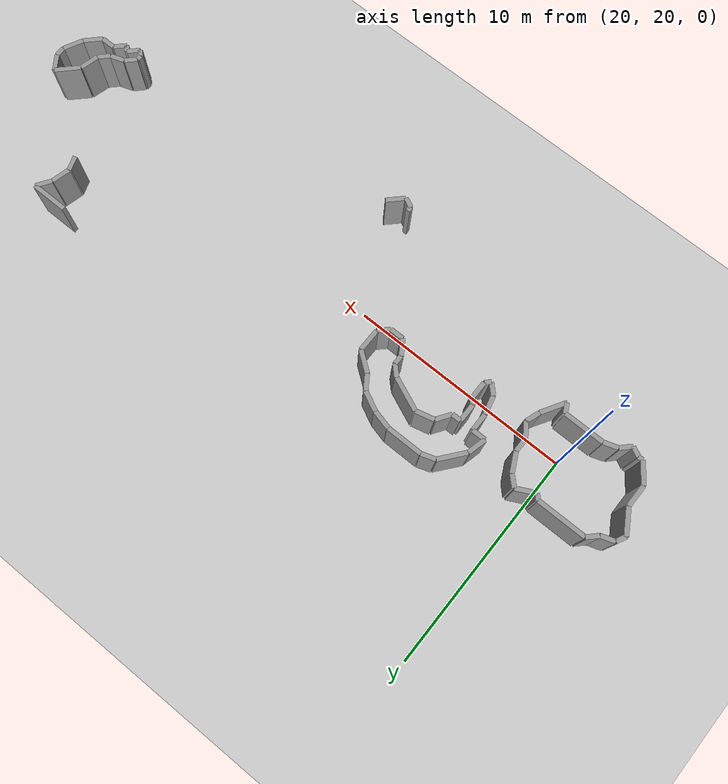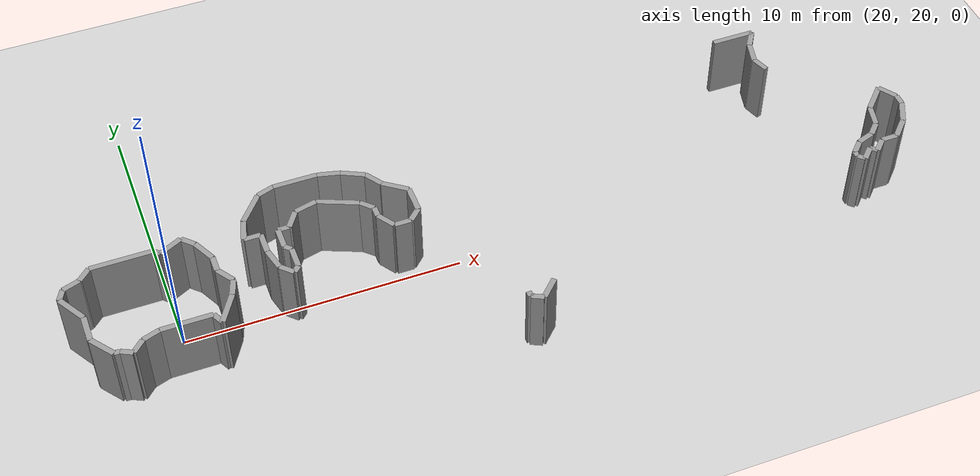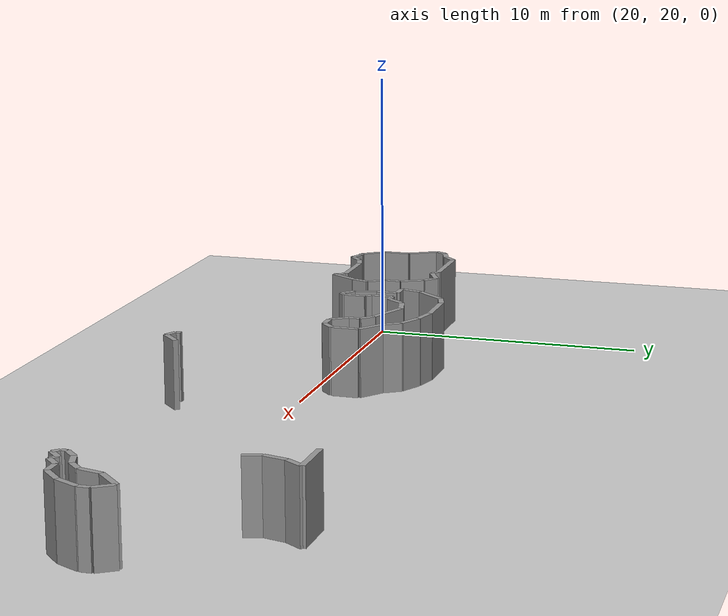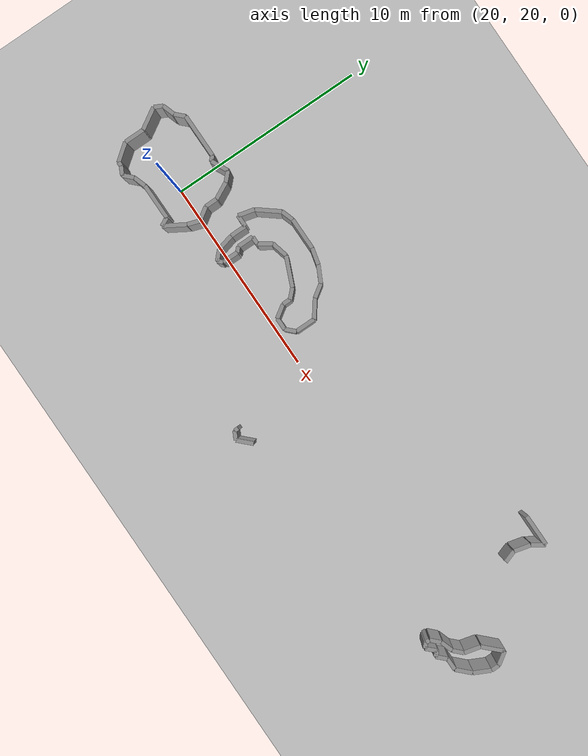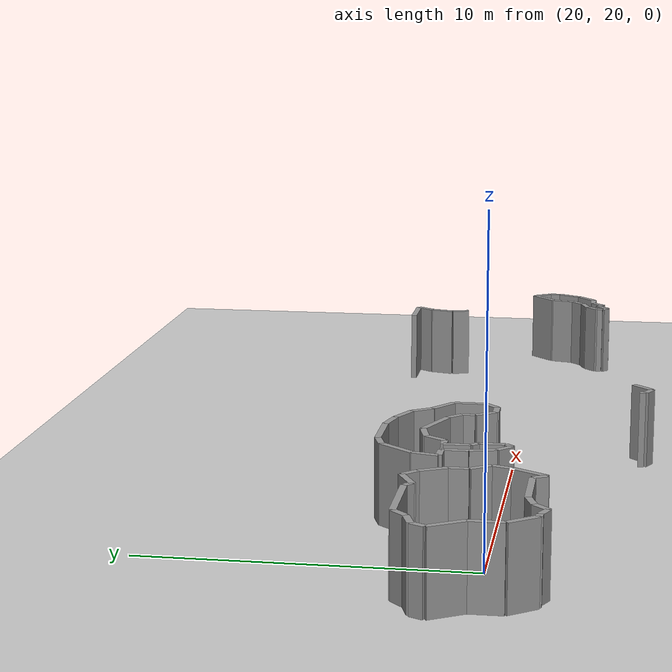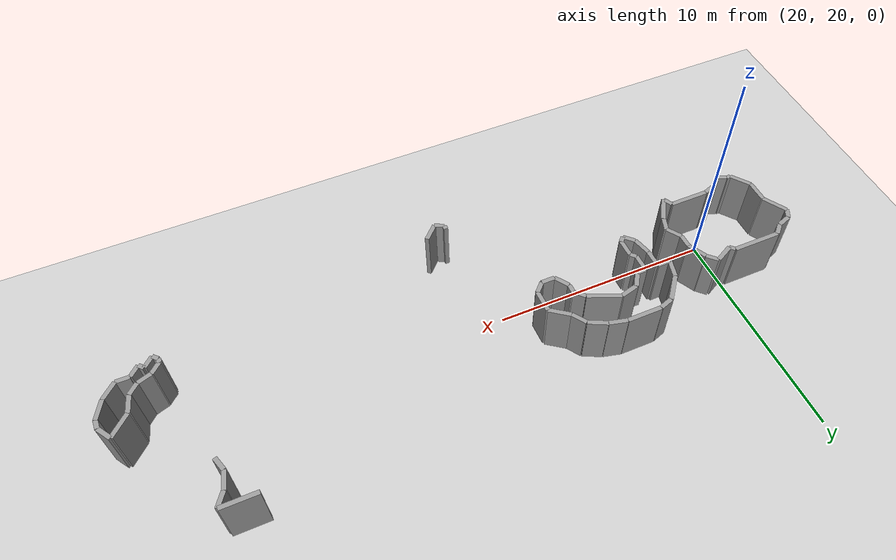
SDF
<sdf version="1.4">
 <world name="1_wall">
  <model name="ground_plane">
   <static>1</static>
   <link name="link">
    <collision name="collision">
     <geometry><plane><normal>0 0 1</normal><size>1000 1000</size></plane></geometry>
     <surface><friction><ode><mu>100</mu><mu2>50</mu2></ode></friction></surface>
    </collision>
    <visual name="visual">
     <cast_shadows>0</cast_shadows>
     <geometry><plane><normal>0 0 1</normal><size>10000 10000</size></plane></geometry>
     <material>
      <script><uri>file://media/materials/scripts/gazebo.material</uri><name>Gazebo/Grey</name></script>
     </material>
    </visual>
    <velocity_decay><linear>0</linear><angular>0</angular></velocity_decay>
   </link>
  </model>
  <model name="Wall_757">
   <static>1</static>
   <link name="Wall_757">
    <collision name="Wall_Collision_757">
     <geometry><box><size>1.6 0.2 2.5</size></box></geometry>
     <pose>0 0 1.25 0 -0 0</pose>
    </collision>
    <visual name="Wall_Visual_757">
     <pose>0 0 1.25 0 -0 0</pose>
     <geometry><box><size>1.6 0.2 2.5</size></box></geometry>
     <material>
      <script><uri>file://media/materials/scripts/gazebo.material</uri><name>Gazebo/Grey</name></script>
     </material>
    </visual>
    <velocity_decay><linear>0</linear><angular>0</angular></velocity_decay>
    <pose>42.8 24.8 0 0 0 0.0</pose>
   </link>
  </model>
  <model name="Wall_758">
   <static>1</static>
   <link name="Wall_758">
    <collision name="Wall_Collision_758">
     <geometry><box><size>0.721110255093 0.2 2.5</size></box></geometry>
     <pose>0 0 1.25 0 -0 0</pose>
    </collision>
    <visual name="Wall_Visual_758">
     <pose>0 0 1.25 0 -0 0</pose>
     <geometry><box><size>0.721110255093 0.2 2.5</size></box></geometry>
     <material>
      <script><uri>file://media/materials/scripts/gazebo.material</uri><name>Gazebo/Grey</name></script>
     </material>
    </visual>
    <velocity_decay><linear>0</linear><angular>0</angular></velocity_decay>
    <pose>43.4 24.5 0 0 0 -2.15879893034</pose>
   </link>
  </model>
  <model name="Wall_759">
   <static>1</static>
   <link name="Wall_759">
    <collision name="Wall_Collision_759">
     <geometry><box><size>0.824621125124 0.2 2.5</size></box></geometry>
     <pose>0 0 1.25 0 -0 0</pose>
    </collision>
    <visual name="Wall_Visual_759">
     <pose>0 0 1.25 0 -0 0</pose>
     <geometry><box><size>0.824621125124 0.2 2.5</size></box></geometry>
     <material>
      <script><uri>file://media/materials/scripts/gazebo.material</uri><name>Gazebo/Grey</name></script>
     </material>
    </visual>
    <velocity_decay><linear>0</linear><angular>0</angular></velocity_decay>
    <pose>43.1 23.8 0 0 0 -1.81577498992</pose>
   </link>
  </model>
  <model name="Wall_760">
   <static>1</static>
   <link name="Wall_760">
    <collision name="Wall_Collision_760">
     <geometry><box><size>0.632455532034 0.2 2.5</size></box></geometry>
     <pose>0 0 1.25 0 -0 0</pose>
    </collision>
    <visual name="Wall_Visual_760">
     <pose>0 0 1.25 0 -0 0</pose>
     <geometry><box><size>0.632455532034 0.2 2.5</size></box></geometry>
     <material>
      <script><uri>file://media/materials/scripts/gazebo.material</uri><name>Gazebo/Grey</name></script>
     </material>
    </visual>
    <velocity_decay><linear>0</linear><angular>0</angular></velocity_decay>
    <pose>43.1 23.1 0 0 0 -1.2490457724</pose>
   </link>
  </model>
  <model name="Wall_761">
   <static>1</static>
   <link name="Wall_761">
    <collision name="Wall_Collision_761">
     <geometry><box><size>0.565685424949 0.2 2.5</size></box></geometry>
     <pose>0 0 1.25 0 -0 0</pose>
    </collision>
    <visual name="Wall_Visual_761">
     <pose>0 0 1.25 0 -0 0</pose>
     <geometry><box><size>0.565685424949 0.2 2.5</size></box></geometry>
     <material>
      <script><uri>file://media/materials/scripts/gazebo.material</uri><name>Gazebo/Grey</name></script>
     </material>
    </visual>
    <velocity_decay><linear>0</linear><angular>0</angular></velocity_decay>
    <pose>23.8 19.8 0 0 0 -0.785398163397</pose>
   </link>
  </model>
  <model name="Wall_762">
   <static>1</static>
   <link name="Wall_762">
    <collision name="Wall_Collision_762">
     <geometry><box><size>0.282842712475 0.2 2.5</size></box></geometry>
     <pose>0 0 1.25 0 -0 0</pose>
    </collision>
    <visual name="Wall_Visual_762">
     <pose>0 0 1.25 0 -0 0</pose>
     <geometry><box><size>0.282842712475 0.2 2.5</size></box></geometry>
     <material>
      <script><uri>file://media/materials/scripts/gazebo.material</uri><name>Gazebo/Grey</name></script>
     </material>
    </visual>
    <velocity_decay><linear>0</linear><angular>0</angular></velocity_decay>
    <pose>24.1 19.7 0 0 0 0.785398163397</pose>
   </link>
  </model>
  <model name="Wall_763">
   <static>1</static>
   <link name="Wall_763">
    <collision name="Wall_Collision_763">
     <geometry><box><size>0.8 0.2 2.5</size></box></geometry>
     <pose>0 0 1.25 0 -0 0</pose>
    </collision>
    <visual name="Wall_Visual_763">
     <pose>0 0 1.25 0 -0 0</pose>
     <geometry><box><size>0.8 0.2 2.5</size></box></geometry>
     <material>
      <script><uri>file://media/materials/scripts/gazebo.material</uri><name>Gazebo/Grey</name></script>
     </material>
    </visual>
    <velocity_decay><linear>0</linear><angular>0</angular></velocity_decay>
    <pose>24.2 20.2 0 0 0 1.57079632679</pose>
   </link>
  </model>
  <model name="Wall_764">
   <static>1</static>
   <link name="Wall_764">
    <collision name="Wall_Collision_764">
     <geometry><box><size>0.282842712475 0.2 2.5</size></box></geometry>
     <pose>0 0 1.25 0 -0 0</pose>
    </collision>
    <visual name="Wall_Visual_764">
     <pose>0 0 1.25 0 -0 0</pose>
     <geometry><box><size>0.282842712475 0.2 2.5</size></box></geometry>
     <material>
      <script><uri>file://media/materials/scripts/gazebo.material</uri><name>Gazebo/Grey</name></script>
     </material>
    </visual>
    <velocity_decay><linear>0</linear><angular>0</angular></velocity_decay>
    <pose>24.1 20.7 0 0 0 2.35619449019</pose>
   </link>
  </model>
  <model name="Wall_765">
   <static>1</static>
   <link name="Wall_765">
    <collision name="Wall_Collision_765">
     <geometry><box><size>0.8 0.2 2.5</size></box></geometry>
     <pose>0 0 1.25 0 -0 0</pose>
    </collision>
    <visual name="Wall_Visual_765">
     <pose>0 0 1.25 0 -0 0</pose>
     <geometry><box><size>0.8 0.2 2.5</size></box></geometry>
     <material>
      <script><uri>file://media/materials/scripts/gazebo.material</uri><name>Gazebo/Grey</name></script>
     </material>
    </visual>
    <velocity_decay><linear>0</linear><angular>0</angular></velocity_decay>
    <pose>24.0 21.2 0 0 0 1.57079632679</pose>
   </link>
  </model>
  <model name="Wall_766">
   <static>1</static>
   <link name="Wall_766">
    <collision name="Wall_Collision_766">
     <geometry><box><size>0.4 0.2 2.5</size></box></geometry>
     <pose>0 0 1.25 0 -0 0</pose>
    </collision>
    <visual name="Wall_Visual_766">
     <pose>0 0 1.25 0 -0 0</pose>
     <geometry><box><size>0.4 0.2 2.5</size></box></geometry>
     <material>
      <script><uri>file://media/materials/scripts/gazebo.material</uri><name>Gazebo/Grey</name></script>
     </material>
    </visual>
    <velocity_decay><linear>0</linear><angular>0</angular></velocity_decay>
    <pose>24.2 21.6 0 0 0 0.0</pose>
   </link>
  </model>
  <model name="Wall_767">
   <static>1</static>
   <link name="Wall_767">
    <collision name="Wall_Collision_767">
     <geometry><box><size>0.721110255093 0.2 2.5</size></box></geometry>
     <pose>0 0 1.25 0 -0 0</pose>
    </collision>
    <visual name="Wall_Visual_767">
     <pose>0 0 1.25 0 -0 0</pose>
     <geometry><box><size>0.721110255093 0.2 2.5</size></box></geometry>
     <material>
      <script><uri>file://media/materials/scripts/gazebo.material</uri><name>Gazebo/Grey</name></script>
     </material>
    </visual>
    <velocity_decay><linear>0</linear><angular>0</angular></velocity_decay>
    <pose>24.6 21.9 0 0 0 0.982793723247</pose>
   </link>
  </model>
  <model name="Wall_768">
   <static>1</static>
   <link name="Wall_768">
    <collision name="Wall_Collision_768">
     <geometry><box><size>0.824621125124 0.2 2.5</size></box></geometry>
     <pose>0 0 1.25 0 -0 0</pose>
    </collision>
    <visual name="Wall_Visual_768">
     <pose>0 0 1.25 0 -0 0</pose>
     <geometry><box><size>0.824621125124 0.2 2.5</size></box></geometry>
     <material>
      <script><uri>file://media/materials/scripts/gazebo.material</uri><name>Gazebo/Grey</name></script>
     </material>
    </visual>
    <velocity_decay><linear>0</linear><angular>0</angular></velocity_decay>
    <pose>25.2 22.3 0 0 0 0.244978663127</pose>
   </link>
  </model>
  <model name="Wall_769">
   <static>1</static>
   <link name="Wall_769">
    <collision name="Wall_Collision_769">
     <geometry><box><size>1.52315462117 0.2 2.5</size></box></geometry>
     <pose>0 0 1.25 0 -0 0</pose>
    </collision>
    <visual name="Wall_Visual_769">
     <pose>0 0 1.25 0 -0 0</pose>
     <geometry><box><size>1.52315462117 0.2 2.5</size></box></geometry>
     <material>
      <script><uri>file://media/materials/scripts/gazebo.material</uri><name>Gazebo/Grey</name></script>
     </material>
    </visual>
    <velocity_decay><linear>0</linear><angular>0</angular></velocity_decay>
    <pose>26.3 22.1 0 0 0 -0.404891786285</pose>
   </link>
  </model>
  <model name="Wall_770">
   <static>1</static>
   <link name="Wall_770">
    <collision name="Wall_Collision_770">
     <geometry><box><size>0.565685424949 0.2 2.5</size></box></geometry>
     <pose>0 0 1.25 0 -0 0</pose>
    </collision>
    <visual name="Wall_Visual_770">
     <pose>0 0 1.25 0 -0 0</pose>
     <geometry><box><size>0.565685424949 0.2 2.5</size></box></geometry>
     <material>
      <script><uri>file://media/materials/scripts/gazebo.material</uri><name>Gazebo/Grey</name></script>
     </material>
    </visual>
    <velocity_decay><linear>0</linear><angular>0</angular></velocity_decay>
    <pose>27.2 21.6 0 0 0 -0.785398163397</pose>
   </link>
  </model>
  <model name="Wall_771">
   <static>1</static>
   <link name="Wall_771">
    <collision name="Wall_Collision_771">
     <geometry><box><size>0.4 0.2 2.5</size></box></geometry>
     <pose>0 0 1.25 0 -0 0</pose>
    </collision>
    <visual name="Wall_Visual_771">
     <pose>0 0 1.25 0 -0 0</pose>
     <geometry><box><size>0.4 0.2 2.5</size></box></geometry>
     <material>
      <script><uri>file://media/materials/scripts/gazebo.material</uri><name>Gazebo/Grey</name></script>
     </material>
    </visual>
    <velocity_decay><linear>0</linear><angular>0</angular></velocity_decay>
    <pose>27.4 21.2 0 0 0 -1.57079632679</pose>
   </link>
  </model>
  <model name="Wall_772">
   <static>1</static>
   <link name="Wall_772">
    <collision name="Wall_Collision_772">
     <geometry><box><size>0.721110255093 0.2 2.5</size></box></geometry>
     <pose>0 0 1.25 0 -0 0</pose>
    </collision>
    <visual name="Wall_Visual_772">
     <pose>0 0 1.25 0 -0 0</pose>
     <geometry><box><size>0.721110255093 0.2 2.5</size></box></geometry>
     <material>
      <script><uri>file://media/materials/scripts/gazebo.material</uri><name>Gazebo/Grey</name></script>
     </material>
    </visual>
    <velocity_decay><linear>0</linear><angular>0</angular></velocity_decay>
    <pose>27.6 20.7 0 0 0 -0.982793723247</pose>
   </link>
  </model>
  <model name="Wall_773">
   <static>1</static>
   <link name="Wall_773">
    <collision name="Wall_Collision_773">
     <geometry><box><size>0.6 0.2 2.5</size></box></geometry>
     <pose>0 0 1.25 0 -0 0</pose>
    </collision>
    <visual name="Wall_Visual_773">
     <pose>0 0 1.25 0 -0 0</pose>
     <geometry><box><size>0.6 0.2 2.5</size></box></geometry>
     <material>
      <script><uri>file://media/materials/scripts/gazebo.material</uri><name>Gazebo/Grey</name></script>
     </material>
    </visual>
    <velocity_decay><linear>0</linear><angular>0</angular></velocity_decay>
    <pose>28.1 20.4 0 0 0 0.0</pose>
   </link>
  </model>
  <model name="Wall_774">
   <static>1</static>
   <link name="Wall_774">
    <collision name="Wall_Collision_774">
     <geometry><box><size>0.565685424949 0.2 2.5</size></box></geometry>
     <pose>0 0 1.25 0 -0 0</pose>
    </collision>
    <visual name="Wall_Visual_774">
     <pose>0 0 1.25 0 -0 0</pose>
     <geometry><box><size>0.565685424949 0.2 2.5</size></box></geometry>
     <material>
      <script><uri>file://media/materials/scripts/gazebo.material</uri><name>Gazebo/Grey</name></script>
     </material>
    </visual>
    <velocity_decay><linear>0</linear><angular>0</angular></velocity_decay>
    <pose>28.6 20.6 0 0 0 0.785398163397</pose>
   </link>
  </model>
  <model name="Wall_775">
   <static>1</static>
   <link name="Wall_775">
    <collision name="Wall_Collision_775">
     <geometry><box><size>1.0 0.2 2.5</size></box></geometry>
     <pose>0 0 1.25 0 -0 0</pose>
    </collision>
    <visual name="Wall_Visual_775">
     <pose>0 0 1.25 0 -0 0</pose>
     <geometry><box><size>1.0 0.2 2.5</size></box></geometry>
     <material>
      <script><uri>file://media/materials/scripts/gazebo.material</uri><name>Gazebo/Grey</name></script>
     </material>
    </visual>
    <velocity_decay><linear>0</linear><angular>0</angular></velocity_decay>
    <pose>28.8 21.3 0 0 0 1.57079632679</pose>
   </link>
  </model>
  <model name="Wall_776">
   <static>1</static>
   <link name="Wall_776">
    <collision name="Wall_Collision_776">
     <geometry><box><size>1.0 0.2 2.5</size></box></geometry>
     <pose>0 0 1.25 0 -0 0</pose>
    </collision>
    <visual name="Wall_Visual_776">
     <pose>0 0 1.25 0 -0 0</pose>
     <geometry><box><size>1.0 0.2 2.5</size></box></geometry>
     <material>
      <script><uri>file://media/materials/scripts/gazebo.material</uri><name>Gazebo/Grey</name></script>
     </material>
    </visual>
    <velocity_decay><linear>0</linear><angular>0</angular></velocity_decay>
    <pose>28.4 22.1 0 0 0 2.4980915448</pose>
   </link>
  </model>
  <model name="Wall_777">
   <static>1</static>
   <link name="Wall_777">
    <collision name="Wall_Collision_777">
     <geometry><box><size>0.721110255093 0.2 2.5</size></box></geometry>
     <pose>0 0 1.25 0 -0 0</pose>
    </collision>
    <visual name="Wall_Visual_777">
     <pose>0 0 1.25 0 -0 0</pose>
     <geometry><box><size>0.721110255093 0.2 2.5</size></box></geometry>
     <material>
      <script><uri>file://media/materials/scripts/gazebo.material</uri><name>Gazebo/Grey</name></script>
     </material>
    </visual>
    <velocity_decay><linear>0</linear><angular>0</angular></velocity_decay>
    <pose>27.8 22.7 0 0 0 2.15879893034</pose>
   </link>
  </model>
  <model name="Wall_778">
   <static>1</static>
   <link name="Wall_778">
    <collision name="Wall_Collision_778">
     <geometry><box><size>0.894427191 0.2 2.5</size></box></geometry>
     <pose>0 0 1.25 0 -0 0</pose>
    </collision>
    <visual name="Wall_Visual_778">
     <pose>0 0 1.25 0 -0 0</pose>
     <geometry><box><size>0.894427191 0.2 2.5</size></box></geometry>
     <material>
      <script><uri>file://media/materials/scripts/gazebo.material</uri><name>Gazebo/Grey</name></script>
     </material>
    </visual>
    <velocity_decay><linear>0</linear><angular>0</angular></velocity_decay>
    <pose>27.2 23.2 0 0 0 2.67794504459</pose>
   </link>
  </model>
  <model name="Wall_779">
   <static>1</static>
   <link name="Wall_779">
    <collision name="Wall_Collision_779">
     <geometry><box><size>0.824621125124 0.2 2.5</size></box></geometry>
     <pose>0 0 1.25 0 -0 0</pose>
    </collision>
    <visual name="Wall_Visual_779">
     <pose>0 0 1.25 0 -0 0</pose>
     <geometry><box><size>0.824621125124 0.2 2.5</size></box></geometry>
     <material>
      <script><uri>file://media/materials/scripts/gazebo.material</uri><name>Gazebo/Grey</name></script>
     </material>
    </visual>
    <velocity_decay><linear>0</linear><angular>0</angular></velocity_decay>
    <pose>26.4 23.5 0 0 0 2.89661399046</pose>
   </link>
  </model>
  <model name="Wall_780">
   <static>1</static>
   <link name="Wall_780">
    <collision name="Wall_Collision_780">
     <geometry><box><size>1.6 0.2 2.5</size></box></geometry>
     <pose>0 0 1.25 0 -0 0</pose>
    </collision>
    <visual name="Wall_Visual_780">
     <pose>0 0 1.25 0 -0 0</pose>
     <geometry><box><size>1.6 0.2 2.5</size></box></geometry>
     <material>
      <script><uri>file://media/materials/scripts/gazebo.material</uri><name>Gazebo/Grey</name></script>
     </material>
    </visual>
    <velocity_decay><linear>0</linear><angular>0</angular></velocity_decay>
    <pose>25.2 23.6 0 0 0 3.14159265359</pose>
   </link>
  </model>
  <model name="Wall_781">
   <static>1</static>
   <link name="Wall_781">
    <collision name="Wall_Collision_781">
     <geometry><box><size>0.632455532034 0.2 2.5</size></box></geometry>
     <pose>0 0 1.25 0 -0 0</pose>
    </collision>
    <visual name="Wall_Visual_781">
     <pose>0 0 1.25 0 -0 0</pose>
     <geometry><box><size>0.632455532034 0.2 2.5</size></box></geometry>
     <material>
      <script><uri>file://media/materials/scripts/gazebo.material</uri><name>Gazebo/Grey</name></script>
     </material>
    </visual>
    <velocity_decay><linear>0</linear><angular>0</angular></velocity_decay>
    <pose>24.1 23.5 0 0 0 -2.81984209919</pose>
   </link>
  </model>
  <model name="Wall_782">
   <static>1</static>
   <link name="Wall_782">
    <collision name="Wall_Collision_782">
     <geometry><box><size>1.28062484749 0.2 2.5</size></box></geometry>
     <pose>0 0 1.25 0 -0 0</pose>
    </collision>
    <visual name="Wall_Visual_782">
     <pose>0 0 1.25 0 -0 0</pose>
     <geometry><box><size>1.28062484749 0.2 2.5</size></box></geometry>
     <material>
      <script><uri>file://media/materials/scripts/gazebo.material</uri><name>Gazebo/Grey</name></script>
     </material>
    </visual>
    <velocity_decay><linear>0</linear><angular>0</angular></velocity_decay>
    <pose>23.4 22.9 0 0 0 -2.24553726902</pose>
   </link>
  </model>
  <model name="Wall_783">
   <static>1</static>
   <link name="Wall_783">
    <collision name="Wall_Collision_783">
     <geometry><box><size>0.824621125124 0.2 2.5</size></box></geometry>
     <pose>0 0 1.25 0 -0 0</pose>
    </collision>
    <visual name="Wall_Visual_783">
     <pose>0 0 1.25 0 -0 0</pose>
     <geometry><box><size>0.824621125124 0.2 2.5</size></box></geometry>
     <material>
      <script><uri>file://media/materials/scripts/gazebo.material</uri><name>Gazebo/Grey</name></script>
     </material>
    </visual>
    <velocity_decay><linear>0</linear><angular>0</angular></velocity_decay>
    <pose>22.9 22.0 0 0 0 -1.81577498992</pose>
   </link>
  </model>
  <model name="Wall_784">
   <static>1</static>
   <link name="Wall_784">
    <collision name="Wall_Collision_784">
     <geometry><box><size>0.6 0.2 2.5</size></box></geometry>
     <pose>0 0 1.25 0 -0 0</pose>
    </collision>
    <visual name="Wall_Visual_784">
     <pose>0 0 1.25 0 -0 0</pose>
     <geometry><box><size>0.6 0.2 2.5</size></box></geometry>
     <material>
      <script><uri>file://media/materials/scripts/gazebo.material</uri><name>Gazebo/Grey</name></script>
     </material>
    </visual>
    <velocity_decay><linear>0</linear><angular>0</angular></velocity_decay>
    <pose>23.1 21.6 0 0 0 0.0</pose>
   </link>
  </model>
  <model name="Wall_785">
   <static>1</static>
   <link name="Wall_785">
    <collision name="Wall_Collision_785">
     <geometry><box><size>0.8 0.2 2.5</size></box></geometry>
     <pose>0 0 1.25 0 -0 0</pose>
    </collision>
    <visual name="Wall_Visual_785">
     <pose>0 0 1.25 0 -0 0</pose>
     <geometry><box><size>0.8 0.2 2.5</size></box></geometry>
     <material>
      <script><uri>file://media/materials/scripts/gazebo.material</uri><name>Gazebo/Grey</name></script>
     </material>
    </visual>
    <velocity_decay><linear>0</linear><angular>0</angular></velocity_decay>
    <pose>23.4 21.2 0 0 0 -1.57079632679</pose>
   </link>
  </model>
  <model name="Wall_786">
   <static>1</static>
   <link name="Wall_786">
    <collision name="Wall_Collision_786">
     <geometry><box><size>0.824621125124 0.2 2.5</size></box></geometry>
     <pose>0 0 1.25 0 -0 0</pose>
    </collision>
    <visual name="Wall_Visual_786">
     <pose>0 0 1.25 0 -0 0</pose>
     <geometry><box><size>0.824621125124 0.2 2.5</size></box></geometry>
     <material>
      <script><uri>file://media/materials/scripts/gazebo.material</uri><name>Gazebo/Grey</name></script>
     </material>
    </visual>
    <velocity_decay><linear>0</linear><angular>0</angular></velocity_decay>
    <pose>23.5 20.4 0 0 0 -1.32581766367</pose>
   </link>
  </model>
  <model name="Wall_787">
   <static>1</static>
   <link name="Wall_787">
    <collision name="Wall_Collision_787">
     <geometry><box><size>0.2 0.2 2.5</size></box></geometry>
     <pose>0 0 1.25 0 -0 0</pose>
    </collision>
    <visual name="Wall_Visual_787">
     <pose>0 0 1.25 0 -0 0</pose>
     <geometry><box><size>0.2 0.2 2.5</size></box></geometry>
     <material>
      <script><uri>file://media/materials/scripts/gazebo.material</uri><name>Gazebo/Grey</name></script>
     </material>
    </visual>
    <velocity_decay><linear>0</linear><angular>0</angular></velocity_decay>
    <pose>17.7 18.4 0 0 0 0.0</pose>
   </link>
  </model>
  <model name="Wall_788">
   <static>1</static>
   <link name="Wall_788">
    <collision name="Wall_Collision_788">
     <geometry><box><size>0.4472135955 0.2 2.5</size></box></geometry>
     <pose>0 0 1.25 0 -0 0</pose>
    </collision>
    <visual name="Wall_Visual_788">
     <pose>0 0 1.25 0 -0 0</pose>
     <geometry><box><size>0.4472135955 0.2 2.5</size></box></geometry>
     <material>
      <script><uri>file://media/materials/scripts/gazebo.material</uri><name>Gazebo/Grey</name></script>
     </material>
    </visual>
    <velocity_decay><linear>0</linear><angular>0</angular></velocity_decay>
    <pose>18.0 18.3 0 0 0 -0.463647609001</pose>
   </link>
  </model>
  <model name="Wall_789">
   <static>1</static>
   <link name="Wall_789">
    <collision name="Wall_Collision_789">
     <geometry><box><size>0.565685424949 0.2 2.5</size></box></geometry>
     <pose>0 0 1.25 0 -0 0</pose>
    </collision>
    <visual name="Wall_Visual_789">
     <pose>0 0 1.25 0 -0 0</pose>
     <geometry><box><size>0.565685424949 0.2 2.5</size></box></geometry>
     <material>
      <script><uri>file://media/materials/scripts/gazebo.material</uri><name>Gazebo/Grey</name></script>
     </material>
    </visual>
    <velocity_decay><linear>0</linear><angular>0</angular></velocity_decay>
    <pose>18.4 18.4 0 0 0 0.785398163397</pose>
   </link>
  </model>
  <model name="Wall_790">
   <static>1</static>
   <link name="Wall_790">
    <collision name="Wall_Collision_790">
     <geometry><box><size>0.632455532034 0.2 2.5</size></box></geometry>
     <pose>0 0 1.25 0 -0 0</pose>
    </collision>
    <visual name="Wall_Visual_790">
     <pose>0 0 1.25 0 -0 0</pose>
     <geometry><box><size>0.632455532034 0.2 2.5</size></box></geometry>
     <material>
      <script><uri>file://media/materials/scripts/gazebo.material</uri><name>Gazebo/Grey</name></script>
     </material>
    </visual>
    <velocity_decay><linear>0</linear><angular>0</angular></velocity_decay>
    <pose>18.9 18.7 0 0 0 0.321750554397</pose>
   </link>
  </model>
  <model name="Wall_791">
   <static>1</static>
   <link name="Wall_791">
    <collision name="Wall_Collision_791">
     <geometry><box><size>1.8 0.2 2.5</size></box></geometry>
     <pose>0 0 1.25 0 -0 0</pose>
    </collision>
    <visual name="Wall_Visual_791">
     <pose>0 0 1.25 0 -0 0</pose>
     <geometry><box><size>1.8 0.2 2.5</size></box></geometry>
     <material>
      <script><uri>file://media/materials/scripts/gazebo.material</uri><name>Gazebo/Grey</name></script>
     </material>
    </visual>
    <velocity_decay><linear>0</linear><angular>0</angular></velocity_decay>
    <pose>20.1 18.8 0 0 0 0.0</pose>
   </link>
  </model>
  <model name="Wall_792">
   <static>1</static>
   <link name="Wall_792">
    <collision name="Wall_Collision_792">
     <geometry><box><size>0.4472135955 0.2 2.5</size></box></geometry>
     <pose>0 0 1.25 0 -0 0</pose>
    </collision>
    <visual name="Wall_Visual_792">
     <pose>0 0 1.25 0 -0 0</pose>
     <geometry><box><size>0.4472135955 0.2 2.5</size></box></geometry>
     <material>
      <script><uri>file://media/materials/scripts/gazebo.material</uri><name>Gazebo/Grey</name></script>
     </material>
    </visual>
    <velocity_decay><linear>0</linear><angular>0</angular></velocity_decay>
    <pose>21.1 18.6 0 0 0 -1.10714871779</pose>
   </link>
  </model>
  <model name="Wall_793">
   <static>1</static>
   <link name="Wall_793">
    <collision name="Wall_Collision_793">
     <geometry><box><size>1.16619037897 0.2 2.5</size></box></geometry>
     <pose>0 0 1.25 0 -0 0</pose>
    </collision>
    <visual name="Wall_Visual_793">
     <pose>0 0 1.25 0 -0 0</pose>
     <geometry><box><size>1.16619037897 0.2 2.5</size></box></geometry>
     <material>
      <script><uri>file://media/materials/scripts/gazebo.material</uri><name>Gazebo/Grey</name></script>
     </material>
    </visual>
    <velocity_decay><linear>0</linear><angular>0</angular></velocity_decay>
    <pose>21.5 18.9 0 0 0 1.03037682652</pose>
   </link>
  </model>
  <model name="Wall_794">
   <static>1</static>
   <link name="Wall_794">
    <collision name="Wall_Collision_794">
     <geometry><box><size>0.632455532034 0.2 2.5</size></box></geometry>
     <pose>0 0 1.25 0 -0 0</pose>
    </collision>
    <visual name="Wall_Visual_794">
     <pose>0 0 1.25 0 -0 0</pose>
     <geometry><box><size>0.632455532034 0.2 2.5</size></box></geometry>
     <material>
      <script><uri>file://media/materials/scripts/gazebo.material</uri><name>Gazebo/Grey</name></script>
     </material>
    </visual>
    <velocity_decay><linear>0</linear><angular>0</angular></velocity_decay>
    <pose>21.9 19.7 0 0 0 1.2490457724</pose>
   </link>
  </model>
  <model name="Wall_795">
   <static>1</static>
   <link name="Wall_795">
    <collision name="Wall_Collision_795">
     <geometry><box><size>0.721110255093 0.2 2.5</size></box></geometry>
     <pose>0 0 1.25 0 -0 0</pose>
    </collision>
    <visual name="Wall_Visual_795">
     <pose>0 0 1.25 0 -0 0</pose>
     <geometry><box><size>0.721110255093 0.2 2.5</size></box></geometry>
     <material>
      <script><uri>file://media/materials/scripts/gazebo.material</uri><name>Gazebo/Grey</name></script>
     </material>
    </visual>
    <velocity_decay><linear>0</linear><angular>0</angular></velocity_decay>
    <pose>21.8 20.3 0 0 0 2.15879893034</pose>
   </link>
  </model>
  <model name="Wall_796">
   <static>1</static>
   <link name="Wall_796">
    <collision name="Wall_Collision_796">
     <geometry><box><size>0.6 0.2 2.5</size></box></geometry>
     <pose>0 0 1.25 0 -0 0</pose>
    </collision>
    <visual name="Wall_Visual_796">
     <pose>0 0 1.25 0 -0 0</pose>
     <geometry><box><size>0.6 0.2 2.5</size></box></geometry>
     <material>
      <script><uri>file://media/materials/scripts/gazebo.material</uri><name>Gazebo/Grey</name></script>
     </material>
    </visual>
    <velocity_decay><linear>0</linear><angular>0</angular></velocity_decay>
    <pose>21.6 20.9 0 0 0 1.57079632679</pose>
   </link>
  </model>
  <model name="Wall_797">
   <static>1</static>
   <link name="Wall_797">
    <collision name="Wall_Collision_797">
     <geometry><box><size>0.894427191 0.2 2.5</size></box></geometry>
     <pose>0 0 1.25 0 -0 0</pose>
    </collision>
    <visual name="Wall_Visual_797">
     <pose>0 0 1.25 0 -0 0</pose>
     <geometry><box><size>0.894427191 0.2 2.5</size></box></geometry>
     <material>
      <script><uri>file://media/materials/scripts/gazebo.material</uri><name>Gazebo/Grey</name></script>
     </material>
    </visual>
    <velocity_decay><linear>0</linear><angular>0</angular></velocity_decay>
    <pose>21.4 21.6 0 0 0 2.0344439358</pose>
   </link>
  </model>
  <model name="Wall_798">
   <static>1</static>
   <link name="Wall_798">
    <collision name="Wall_Collision_798">
     <geometry><box><size>0.565685424949 0.2 2.5</size></box></geometry>
     <pose>0 0 1.25 0 -0 0</pose>
    </collision>
    <visual name="Wall_Visual_798">
     <pose>0 0 1.25 0 -0 0</pose>
     <geometry><box><size>0.565685424949 0.2 2.5</size></box></geometry>
     <material>
      <script><uri>file://media/materials/scripts/gazebo.material</uri><name>Gazebo/Grey</name></script>
     </material>
    </visual>
    <velocity_decay><linear>0</linear><angular>0</angular></velocity_decay>
    <pose>21.0 22.2 0 0 0 2.35619449019</pose>
   </link>
  </model>
  <model name="Wall_799">
   <static>1</static>
   <link name="Wall_799">
    <collision name="Wall_Collision_799">
     <geometry><box><size>0.894427191 0.2 2.5</size></box></geometry>
     <pose>0 0 1.25 0 -0 0</pose>
    </collision>
    <visual name="Wall_Visual_799">
     <pose>0 0 1.25 0 -0 0</pose>
     <geometry><box><size>0.894427191 0.2 2.5</size></box></geometry>
     <material>
      <script><uri>file://media/materials/scripts/gazebo.material</uri><name>Gazebo/Grey</name></script>
     </material>
    </visual>
    <velocity_decay><linear>0</linear><angular>0</angular></velocity_decay>
    <pose>20.4 22.2 0 0 0 -2.67794504459</pose>
   </link>
  </model>
  <model name="Wall_800">
   <static>1</static>
   <link name="Wall_800">
    <collision name="Wall_Collision_800">
     <geometry><box><size>0.282842712475 0.2 2.5</size></box></geometry>
     <pose>0 0 1.25 0 -0 0</pose>
    </collision>
    <visual name="Wall_Visual_800">
     <pose>0 0 1.25 0 -0 0</pose>
     <geometry><box><size>0.282842712475 0.2 2.5</size></box></geometry>
     <material>
      <script><uri>file://media/materials/scripts/gazebo.material</uri><name>Gazebo/Grey</name></script>
     </material>
    </visual>
    <velocity_decay><linear>0</linear><angular>0</angular></velocity_decay>
    <pose>19.9 22.1 0 0 0 2.35619449019</pose>
   </link>
  </model>
  <model name="Wall_801">
   <static>1</static>
   <link name="Wall_801">
    <collision name="Wall_Collision_801">
     <geometry><box><size>2.2 0.2 2.5</size></box></geometry>
     <pose>0 0 1.25 0 -0 0</pose>
    </collision>
    <visual name="Wall_Visual_801">
     <pose>0 0 1.25 0 -0 0</pose>
     <geometry><box><size>2.2 0.2 2.5</size></box></geometry>
     <material>
      <script><uri>file://media/materials/scripts/gazebo.material</uri><name>Gazebo/Grey</name></script>
     </material>
    </visual>
    <velocity_decay><linear>0</linear><angular>0</angular></velocity_decay>
    <pose>18.7 22.2 0 0 0 3.14159265359</pose>
   </link>
  </model>
  <model name="Wall_802">
   <static>1</static>
   <link name="Wall_802">
    <collision name="Wall_Collision_802">
     <geometry><box><size>0.565685424949 0.2 2.5</size></box></geometry>
     <pose>0 0 1.25 0 -0 0</pose>
    </collision>
    <visual name="Wall_Visual_802">
     <pose>0 0 1.25 0 -0 0</pose>
     <geometry><box><size>0.565685424949 0.2 2.5</size></box></geometry>
     <material>
      <script><uri>file://media/materials/scripts/gazebo.material</uri><name>Gazebo/Grey</name></script>
     </material>
    </visual>
    <velocity_decay><linear>0</linear><angular>0</angular></velocity_decay>
    <pose>17.4 22.0 0 0 0 -2.35619449019</pose>
   </link>
  </model>
  <model name="Wall_803">
   <static>1</static>
   <link name="Wall_803">
    <collision name="Wall_Collision_803">
     <geometry><box><size>0.632455532034 0.2 2.5</size></box></geometry>
     <pose>0 0 1.25 0 -0 0</pose>
    </collision>
    <visual name="Wall_Visual_803">
     <pose>0 0 1.25 0 -0 0</pose>
     <geometry><box><size>0.632455532034 0.2 2.5</size></box></geometry>
     <material>
      <script><uri>file://media/materials/scripts/gazebo.material</uri><name>Gazebo/Grey</name></script>
     </material>
    </visual>
    <velocity_decay><linear>0</linear><angular>0</angular></velocity_decay>
    <pose>16.9 21.7 0 0 0 -2.81984209919</pose>
   </link>
  </model>
  <model name="Wall_804">
   <static>1</static>
   <link name="Wall_804">
    <collision name="Wall_Collision_804">
     <geometry><box><size>0.4472135955 0.2 2.5</size></box></geometry>
     <pose>0 0 1.25 0 -0 0</pose>
    </collision>
    <visual name="Wall_Visual_804">
     <pose>0 0 1.25 0 -0 0</pose>
     <geometry><box><size>0.4472135955 0.2 2.5</size></box></geometry>
     <material>
      <script><uri>file://media/materials/scripts/gazebo.material</uri><name>Gazebo/Grey</name></script>
     </material>
    </visual>
    <velocity_decay><linear>0</linear><angular>0</angular></velocity_decay>
    <pose>16.5 21.4 0 0 0 -2.0344439358</pose>
   </link>
  </model>
  <model name="Wall_805">
   <static>1</static>
   <link name="Wall_805">
    <collision name="Wall_Collision_805">
     <geometry><box><size>1.16619037897 0.2 2.5</size></box></geometry>
     <pose>0 0 1.25 0 -0 0</pose>
    </collision>
    <visual name="Wall_Visual_805">
     <pose>0 0 1.25 0 -0 0</pose>
     <geometry><box><size>1.16619037897 0.2 2.5</size></box></geometry>
     <material>
      <script><uri>file://media/materials/scripts/gazebo.material</uri><name>Gazebo/Grey</name></script>
     </material>
    </visual>
    <velocity_decay><linear>0</linear><angular>0</angular></velocity_decay>
    <pose>16.7 20.7 0 0 0 -1.03037682652</pose>
   </link>
  </model>
  <model name="Wall_806">
   <static>1</static>
   <link name="Wall_806">
    <collision name="Wall_Collision_806">
     <geometry><box><size>1.0 0.2 2.5</size></box></geometry>
     <pose>0 0 1.25 0 -0 0</pose>
    </collision>
    <visual name="Wall_Visual_806">
     <pose>0 0 1.25 0 -0 0</pose>
     <geometry><box><size>1.0 0.2 2.5</size></box></geometry>
     <material>
      <script><uri>file://media/materials/scripts/gazebo.material</uri><name>Gazebo/Grey</name></script>
     </material>
    </visual>
    <velocity_decay><linear>0</linear><angular>0</angular></velocity_decay>
    <pose>17.0 19.7 0 0 0 -1.57079632679</pose>
   </link>
  </model>
  <model name="Wall_807">
   <static>1</static>
   <link name="Wall_807">
    <collision name="Wall_Collision_807">
     <geometry><box><size>1.0 0.2 2.5</size></box></geometry>
     <pose>0 0 1.25 0 -0 0</pose>
    </collision>
    <visual name="Wall_Visual_807">
     <pose>0 0 1.25 0 -0 0</pose>
     <geometry><box><size>1.0 0.2 2.5</size></box></geometry>
     <material>
      <script><uri>file://media/materials/scripts/gazebo.material</uri><name>Gazebo/Grey</name></script>
     </material>
    </visual>
    <velocity_decay><linear>0</linear><angular>0</angular></velocity_decay>
    <pose>17.3 18.8 0 0 0 -0.927295218002</pose>
   </link>
  </model>
  <model name="Wall_808">
   <static>1</static>
   <link name="Wall_808">
    <collision name="Wall_Collision_808">
     <geometry><box><size>0.2 0.2 2.5</size></box></geometry>
     <pose>0 0 1.25 0 -0 0</pose>
    </collision>
    <visual name="Wall_Visual_808">
     <pose>0 0 1.25 0 -0 0</pose>
     <geometry><box><size>0.2 0.2 2.5</size></box></geometry>
     <material>
      <script><uri>file://media/materials/scripts/gazebo.material</uri><name>Gazebo/Grey</name></script>
     </material>
    </visual>
    <velocity_decay><linear>0</linear><angular>0</angular></velocity_decay>
    <pose>44.2 17.7 0 0 0 -1.57079632679</pose>
   </link>
  </model>
  <model name="Wall_809">
   <static>1</static>
   <link name="Wall_809">
    <collision name="Wall_Collision_809">
     <geometry><box><size>0.282842712475 0.2 2.5</size></box></geometry>
     <pose>0 0 1.25 0 -0 0</pose>
    </collision>
    <visual name="Wall_Visual_809">
     <pose>0 0 1.25 0 -0 0</pose>
     <geometry><box><size>0.282842712475 0.2 2.5</size></box></geometry>
     <material>
      <script><uri>file://media/materials/scripts/gazebo.material</uri><name>Gazebo/Grey</name></script>
     </material>
    </visual>
    <velocity_decay><linear>0</linear><angular>0</angular></velocity_decay>
    <pose>44.3 17.5 0 0 0 -0.785398163397</pose>
   </link>
  </model>
  <model name="Wall_810">
   <static>1</static>
   <link name="Wall_810">
    <collision name="Wall_Collision_810">
     <geometry><box><size>0.565685424949 0.2 2.5</size></box></geometry>
     <pose>0 0 1.25 0 -0 0</pose>
    </collision>
    <visual name="Wall_Visual_810">
     <pose>0 0 1.25 0 -0 0</pose>
     <geometry><box><size>0.565685424949 0.2 2.5</size></box></geometry>
     <material>
      <script><uri>file://media/materials/scripts/gazebo.material</uri><name>Gazebo/Grey</name></script>
     </material>
    </visual>
    <velocity_decay><linear>0</linear><angular>0</angular></velocity_decay>
    <pose>44.6 17.6 0 0 0 0.785398163397</pose>
   </link>
  </model>
  <model name="Wall_811">
   <static>1</static>
   <link name="Wall_811">
    <collision name="Wall_Collision_811">
     <geometry><box><size>0.282842712475 0.2 2.5</size></box></geometry>
     <pose>0 0 1.25 0 -0 0</pose>
    </collision>
    <visual name="Wall_Visual_811">
     <pose>0 0 1.25 0 -0 0</pose>
     <geometry><box><size>0.282842712475 0.2 2.5</size></box></geometry>
     <material>
      <script><uri>file://media/materials/scripts/gazebo.material</uri><name>Gazebo/Grey</name></script>
     </material>
    </visual>
    <velocity_decay><linear>0</linear><angular>0</angular></velocity_decay>
    <pose>44.9 17.7 0 0 0 -0.785398163397</pose>
   </link>
  </model>
  <model name="Wall_812">
   <static>1</static>
   <link name="Wall_812">
    <collision name="Wall_Collision_812">
     <geometry><box><size>0.565685424949 0.2 2.5</size></box></geometry>
     <pose>0 0 1.25 0 -0 0</pose>
    </collision>
    <visual name="Wall_Visual_812">
     <pose>0 0 1.25 0 -0 0</pose>
     <geometry><box><size>0.565685424949 0.2 2.5</size></box></geometry>
     <material>
      <script><uri>file://media/materials/scripts/gazebo.material</uri><name>Gazebo/Grey</name></script>
     </material>
    </visual>
    <velocity_decay><linear>0</linear><angular>0</angular></velocity_decay>
    <pose>45.2 17.8 0 0 0 0.785398163397</pose>
   </link>
  </model>
  <model name="Wall_813">
   <static>1</static>
   <link name="Wall_813">
    <collision name="Wall_Collision_813">
     <geometry><box><size>0.6 0.2 2.5</size></box></geometry>
     <pose>0 0 1.25 0 -0 0</pose>
    </collision>
    <visual name="Wall_Visual_813">
     <pose>0 0 1.25 0 -0 0</pose>
     <geometry><box><size>0.6 0.2 2.5</size></box></geometry>
     <material>
      <script><uri>file://media/materials/scripts/gazebo.material</uri><name>Gazebo/Grey</name></script>
     </material>
    </visual>
    <velocity_decay><linear>0</linear><angular>0</angular></velocity_decay>
    <pose>45.7 18.0 0 0 0 0.0</pose>
   </link>
  </model>
  <model name="Wall_814">
   <static>1</static>
   <link name="Wall_814">
    <collision name="Wall_Collision_814">
     <geometry><box><size>0.848528137424 0.2 2.5</size></box></geometry>
     <pose>0 0 1.25 0 -0 0</pose>
    </collision>
    <visual name="Wall_Visual_814">
     <pose>0 0 1.25 0 -0 0</pose>
     <geometry><box><size>0.848528137424 0.2 2.5</size></box></geometry>
     <material>
      <script><uri>file://media/materials/scripts/gazebo.material</uri><name>Gazebo/Grey</name></script>
     </material>
    </visual>
    <velocity_decay><linear>0</linear><angular>0</angular></velocity_decay>
    <pose>46.3 18.3 0 0 0 0.785398163397</pose>
   </link>
  </model>
  <model name="Wall_815">
   <static>1</static>
   <link name="Wall_815">
    <collision name="Wall_Collision_815">
     <geometry><box><size>0.894427191 0.2 2.5</size></box></geometry>
     <pose>0 0 1.25 0 -0 0</pose>
    </collision>
    <visual name="Wall_Visual_815">
     <pose>0 0 1.25 0 -0 0</pose>
     <geometry><box><size>0.894427191 0.2 2.5</size></box></geometry>
     <material>
      <script><uri>file://media/materials/scripts/gazebo.material</uri><name>Gazebo/Grey</name></script>
     </material>
    </visual>
    <velocity_decay><linear>0</linear><angular>0</angular></velocity_decay>
    <pose>46.8 19.0 0 0 0 1.10714871779</pose>
   </link>
  </model>
  <model name="Wall_816">
   <static>1</static>
   <link name="Wall_816">
    <collision name="Wall_Collision_816">
     <geometry><box><size>0.4 0.2 2.5</size></box></geometry>
     <pose>0 0 1.25 0 -0 0</pose>
    </collision>
    <visual name="Wall_Visual_816">
     <pose>0 0 1.25 0 -0 0</pose>
     <geometry><box><size>0.4 0.2 2.5</size></box></geometry>
     <material>
      <script><uri>file://media/materials/scripts/gazebo.material</uri><name>Gazebo/Grey</name></script>
     </material>
    </visual>
    <velocity_decay><linear>0</linear><angular>0</angular></velocity_decay>
    <pose>47.0 19.6 0 0 0 1.57079632679</pose>
   </link>
  </model>
  <model name="Wall_817">
   <static>1</static>
   <link name="Wall_817">
    <collision name="Wall_Collision_817">
     <geometry><box><size>0.721110255093 0.2 2.5</size></box></geometry>
     <pose>0 0 1.25 0 -0 0</pose>
    </collision>
    <visual name="Wall_Visual_817">
     <pose>0 0 1.25 0 -0 0</pose>
     <geometry><box><size>0.721110255093 0.2 2.5</size></box></geometry>
     <material>
      <script><uri>file://media/materials/scripts/gazebo.material</uri><name>Gazebo/Grey</name></script>
     </material>
    </visual>
    <velocity_decay><linear>0</linear><angular>0</angular></velocity_decay>
    <pose>46.8 20.1 0 0 0 2.15879893034</pose>
   </link>
  </model>
  <model name="Wall_818">
   <static>1</static>
   <link name="Wall_818">
    <collision name="Wall_Collision_818">
     <geometry><box><size>1.1313708499 0.2 2.5</size></box></geometry>
     <pose>0 0 1.25 0 -0 0</pose>
    </collision>
    <visual name="Wall_Visual_818">
     <pose>0 0 1.25 0 -0 0</pose>
     <geometry><box><size>1.1313708499 0.2 2.5</size></box></geometry>
     <material>
      <script><uri>file://media/materials/scripts/gazebo.material</uri><name>Gazebo/Grey</name></script>
     </material>
    </visual>
    <velocity_decay><linear>0</linear><angular>0</angular></velocity_decay>
    <pose>46.2 20.0 0 0 0 -2.35619449019</pose>
   </link>
  </model>
  <model name="Wall_819">
   <static>1</static>
   <link name="Wall_819">
    <collision name="Wall_Collision_819">
     <geometry><box><size>0.824621125124 0.2 2.5</size></box></geometry>
     <pose>0 0 1.25 0 -0 0</pose>
    </collision>
    <visual name="Wall_Visual_819">
     <pose>0 0 1.25 0 -0 0</pose>
     <geometry><box><size>0.824621125124 0.2 2.5</size></box></geometry>
     <material>
      <script><uri>file://media/materials/scripts/gazebo.material</uri><name>Gazebo/Grey</name></script>
     </material>
    </visual>
    <velocity_decay><linear>0</linear><angular>0</angular></velocity_decay>
    <pose>45.7 19.2 0 0 0 -1.81577498992</pose>
   </link>
  </model>
  <model name="Wall_820">
   <static>1</static>
   <link name="Wall_820">
    <collision name="Wall_Collision_820">
     <geometry><box><size>0.565685424949 0.2 2.5</size></box></geometry>
     <pose>0 0 1.25 0 -0 0</pose>
    </collision>
    <visual name="Wall_Visual_820">
     <pose>0 0 1.25 0 -0 0</pose>
     <geometry><box><size>0.565685424949 0.2 2.5</size></box></geometry>
     <material>
      <script><uri>file://media/materials/scripts/gazebo.material</uri><name>Gazebo/Grey</name></script>
     </material>
    </visual>
    <velocity_decay><linear>0</linear><angular>0</angular></velocity_decay>
    <pose>45.4 18.6 0 0 0 -2.35619449019</pose>
   </link>
  </model>
  <model name="Wall_821">
   <static>1</static>
   <link name="Wall_821">
    <collision name="Wall_Collision_821">
     <geometry><box><size>0.632455532034 0.2 2.5</size></box></geometry>
     <pose>0 0 1.25 0 -0 0</pose>
    </collision>
    <visual name="Wall_Visual_821">
     <pose>0 0 1.25 0 -0 0</pose>
     <geometry><box><size>0.632455532034 0.2 2.5</size></box></geometry>
     <material>
      <script><uri>file://media/materials/scripts/gazebo.material</uri><name>Gazebo/Grey</name></script>
     </material>
    </visual>
    <velocity_decay><linear>0</linear><angular>0</angular></velocity_decay>
    <pose>44.9 18.3 0 0 0 -2.81984209919</pose>
   </link>
  </model>
  <model name="Wall_822">
   <static>1</static>
   <link name="Wall_822">
    <collision name="Wall_Collision_822">
     <geometry><box><size>0.565685424949 0.2 2.5</size></box></geometry>
     <pose>0 0 1.25 0 -0 0</pose>
    </collision>
    <visual name="Wall_Visual_822">
     <pose>0 0 1.25 0 -0 0</pose>
     <geometry><box><size>0.565685424949 0.2 2.5</size></box></geometry>
     <material>
      <script><uri>file://media/materials/scripts/gazebo.material</uri><name>Gazebo/Grey</name></script>
     </material>
    </visual>
    <velocity_decay><linear>0</linear><angular>0</angular></velocity_decay>
    <pose>44.4 18.0 0 0 0 -2.35619449019</pose>
   </link>
  </model>
  <model name="Wall_823">
   <static>1</static>
   <link name="Wall_823">
    <collision name="Wall_Collision_823">
     <geometry><box><size>0.2 0.2 2.5</size></box></geometry>
     <pose>0 0 1.25 0 -0 0</pose>
    </collision>
    <visual name="Wall_Visual_823">
     <pose>0 0 1.25 0 -0 0</pose>
     <geometry><box><size>0.2 0.2 2.5</size></box></geometry>
     <material>
      <script><uri>file://media/materials/scripts/gazebo.material</uri><name>Gazebo/Grey</name></script>
     </material>
    </visual>
    <velocity_decay><linear>0</linear><angular>0</angular></velocity_decay>
    <pose>31.0 15.9 0 0 0 -1.57079632679</pose>
   </link>
  </model>
  <model name="Wall_824">
   <static>1</static>
   <link name="Wall_824">
    <collision name="Wall_Collision_824">
     <geometry><box><size>0.4472135955 0.2 2.5</size></box></geometry>
     <pose>0 0 1.25 0 -0 0</pose>
    </collision>
    <visual name="Wall_Visual_824">
     <pose>0 0 1.25 0 -0 0</pose>
     <geometry><box><size>0.4472135955 0.2 2.5</size></box></geometry>
     <material>
      <script><uri>file://media/materials/scripts/gazebo.material</uri><name>Gazebo/Grey</name></script>
     </material>
    </visual>
    <velocity_decay><linear>0</linear><angular>0</angular></velocity_decay>
    <pose>31.2 15.7 0 0 0 -0.463647609001</pose>
   </link>
  </model>
  <model name="Wall_825">
   <static>1</static>
   <link name="Wall_825">
    <collision name="Wall_Collision_825">
     <geometry><box><size>0.848528137424 0.2 2.5</size></box></geometry>
     <pose>0 0 1.25 0 -0 0</pose>
    </collision>
    <visual name="Wall_Visual_825">
     <pose>0 0 1.25 0 -0 0</pose>
     <geometry><box><size>0.848528137424 0.2 2.5</size></box></geometry>
     <material>
      <script><uri>file://media/materials/scripts/gazebo.material</uri><name>Gazebo/Grey</name></script>
     </material>
    </visual>
    <velocity_decay><linear>0</linear><angular>0</angular></velocity_decay>
    <pose>31.7 15.9 0 0 0 0.785398163397</pose>
   </link>
  </model>
 </world>
</sdf>
